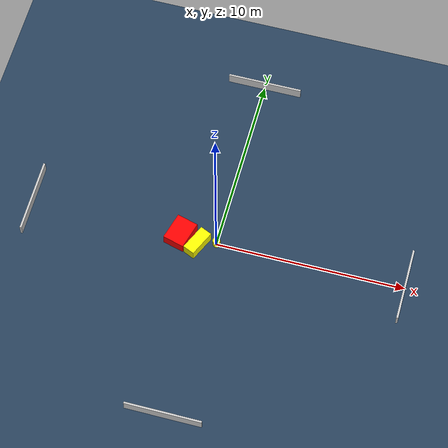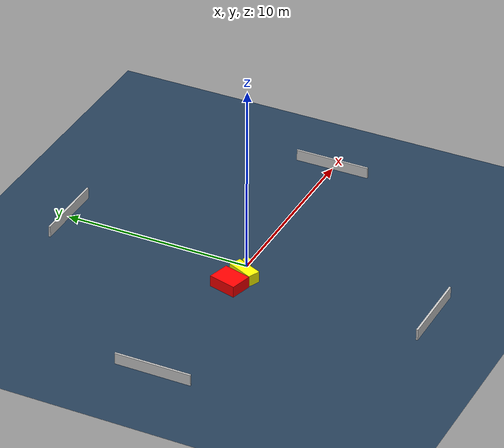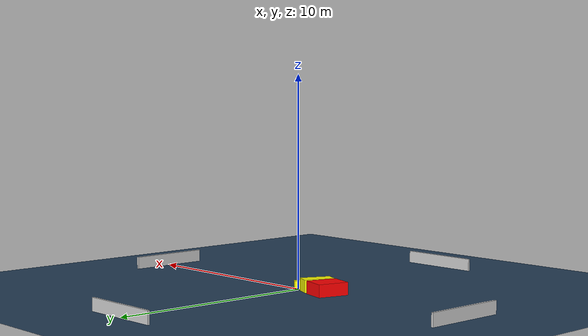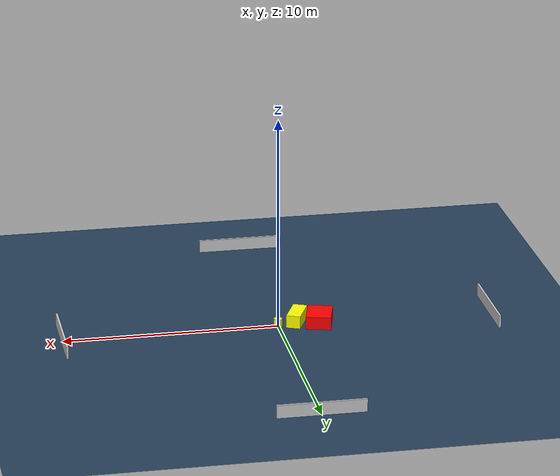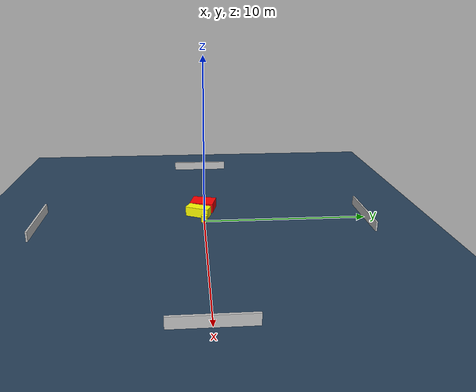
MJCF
<?xml version="1.0" ?>
<mujoco model="generated_environment">
  <option timestep="0.01" integrator="RK4" cone="elliptic"/>
  <default>
    <geom density="1"/>
  </default>
  <asset>
    <texture builtin="gradient" height="3072" name="skybox" rgb1="0.3 0.5 0.7" rgb2="0 0 0" type="skybox" width="512"/>
    <texture builtin="checker" height="300" name="groundplane" rgb1="0.2 0.3 0.4" rgb2="0.1 0.2 0.3" type="2d" width="300"/>
    <material name="groundplane" reflectance="0.2" texrepeat="5 5" texture="groundplane"/>
  </asset>
  <worldbody>
    <light dir="0 0 -1" directional="true" pos="0 0 1.5"/>
    <geom condim="3" friction="0.5 0.005 0.001" material="groundplane" name="floor" pos="0 0 0" size="0 0 0.05" type="plane"/>
    <body name="walls">
      <geom name="wall_1" condim="4" pos="-10.0 0.0 0.3" rgba="0.800000011920929 0.800000011920929 0.800000011920929 1.0" size="0.05 2.0 0.3" type="box"/>
      <geom name="wall_2" condim="4" pos="10.0 0.0 0.3" rgba="0.800000011920929 0.800000011920929 0.800000011920929 1.0" size="0.05 2.0 0.3" type="box"/>
      <geom name="wall_3" condim="4" pos="0.0 -10.0 0.3" rgba="0.800000011920929 0.800000011920929 0.800000011920929 1.0" size="2.0 0.05 0.3" type="box"/>
      <geom name="wall_4" condim="4" pos="0.0 10.0 0.3" rgba="0.800000011920929 0.800000011920929 0.800000011920929 1.0" size="2.0 0.05 0.3" type="box"/>
    </body>
    <body name="robot">
      <joint name="joint_x" type="slide" pos="0 0 0" axis="1 0 0"/>
      <joint name="joint_y" type="slide" pos="0 0 0" axis="0 1 0"/>
      <geom name="robot" type="cylinder" pos="0.0 0.0 0.2" size="0.2 0.2 0.0" mass="5.0" friction="1.0 0.005 0.0001" condim="4" rgba="1.0 1.0 0.0 1.0"/>
    </body>
    <body name="obstacle_1_movable">
      <geom name="obstacle_1_movable" condim="4" pos="-0.9394077129285531 -0.33125381147469923 0.3" euler="0 0 336.0953386615249" friction="0.0 0.005 0.001" rgba="1.0 1.0 0.0 1.0" size="0.32796155510888253 0.7306332664164981 0.3" type="box" mass="0.1"/>
      <joint type="free"/>
    </body>
    <body name="obstacle_2_static">
      <geom name="obstacle_2_static" condim="4" pos="-1.9334606082115502 -0.015549242784325656 0.3" euler="0 0 345.0814710410874" friction="0.0 0.005 0.001" rgba="1.0 0.0 0.0 1.0" size="0.5816932672746662 0.7466096865784739 0.3" type="box"/>
    </body>
  </worldbody>
  <actuator>
    <motor name="actuator_x" joint="joint_x" gear="1" ctrlrange="-1 1"/>
    <motor name="actuator_y" joint="joint_y" gear="1" ctrlrange="-1 1"/>
  </actuator>
</mujoco>
